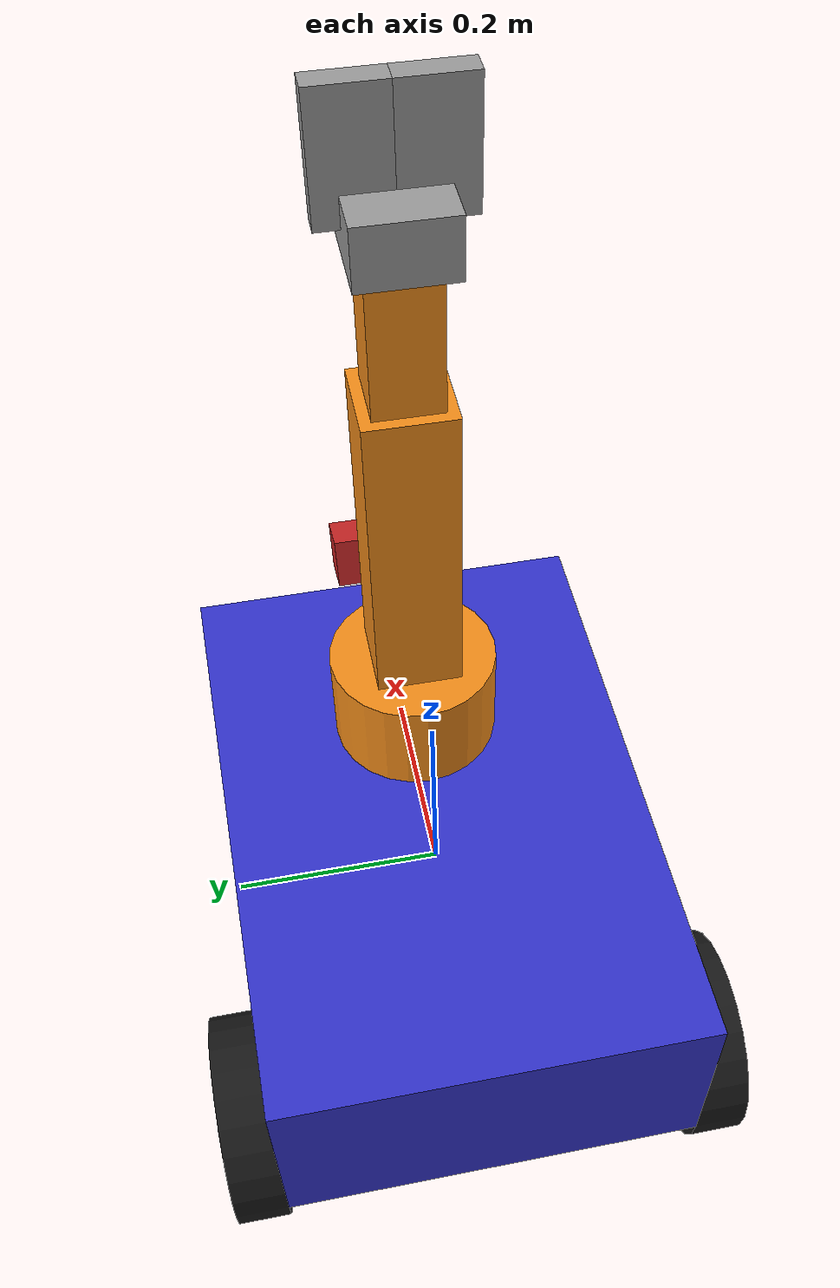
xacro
<?xml version="1.0"?>

<robot name="smartsort_robot" xmlns:xacro="http://www.ros.org/wiki/xacro">

  <!-- Xacro Arguments        -->
  <xacro:arg name="is_ignition" default="true"/>
  <xacro:arg name="wheel_radius" default="0.1"/>
  <xacro:arg name="wheel_separation" default="0.45"/>
  <xacro:arg name="base_length" default="0.6"/>
  <xacro:arg name="base_width" default="0.4"/>
  <xacro:arg name="base_height" default="0.2"/>

  <xacro:property name="base_length" value="$(arg base_length)" />
  <xacro:property name="base_width" value="$(arg base_width)" />
  <xacro:property name="base_height" value="$(arg base_height)" />
  <xacro:property name="wheel_radius" value="$(arg wheel_radius)" />
  <xacro:property name="wheel_separation" value="$(arg wheel_separation)" />

  <!-- Include Gazebo & ROS2 Control Submodules -->
  <xacro:include filename="smartsort_gazebo.xacro"/>
  <xacro:include filename="smartsort_ros2_control.xacro"/>

  <!-- Base Link -->
  <link name="base_link">
    <visual>
      <geometry>
        <box size="${base_length} ${base_width} ${base_height}"/>
      </geometry>
      <material name="blue">
        <color rgba="0.2 0.2 0.8 1.0"/>
      </material>
    </visual>
    <collision>
      <geometry>
        <box size="${base_length} ${base_width} ${base_height}"/>
      </geometry>
    </collision>
    <inertial>
      <mass value="10.0"/>
      <inertia ixx="0.1" ixy="0.0" ixz="0.0"
               iyy="0.1" iyz="0.0" izz="0.1"/>
    </inertial>
  </link>

  <!-- Left Wheel -->
  <link name="left_wheel">
    <visual>
      <geometry>
        <cylinder radius="${wheel_radius}" length="0.05"/>
      </geometry>
      <material name="black">
        <color rgba="0.1 0.1 0.1 1.0"/>
      </material>
    </visual>
    <collision>
      <geometry>
        <cylinder radius="${wheel_radius}" length="0.05"/>
      </geometry>
    </collision>
    <inertial>
      <mass value="1.0"/>
      <inertia ixx="0.01" ixy="0.0" ixz="0.0"
               iyy="0.01" iyz="0.0" izz="0.01"/>
    </inertial>
  </link>

  <joint name="left_wheel_joint" type="continuous">
    <parent link="base_link"/>
    <child link="left_wheel"/>
    <origin xyz="-0.2 0.225 -${base_height/2}" rpy="1.5708 0 0"/>
    <axis xyz="0 0 1"/>
  </joint>

  <!-- Right Wheel -->
  <link name="right_wheel">
    <visual>
      <geometry>
        <cylinder radius="${wheel_radius}" length="0.05"/>
      </geometry>
      <material name="black"/>
    </visual>
    <collision>
      <geometry>
        <cylinder radius="${wheel_radius}" length="0.05"/>
      </geometry>
    </collision>
    <inertial>
      <mass value="1.0"/>
      <inertia ixx="0.01" ixy="0.0" ixz="0.0"
               iyy="0.01" iyz="0.0" izz="0.01"/>
    </inertial>
  </link>

  <joint name="right_wheel_joint" type="continuous">
    <parent link="base_link"/>
    <child link="right_wheel"/>
    <origin xyz="-0.2 -0.225 -${base_height/2}" rpy="1.5708 0 0"/>
    <axis xyz="0 0 1"/>
  </joint>

  <!-- Caster Wheel -->
  <link name="caster">
    <visual>
      <geometry>
        <sphere radius="0.05"/>
      </geometry>
      <material name="gray"/>
    </visual>
    <collision>
      <geometry>
        <sphere radius="0.05"/>
      </geometry>
      <surface>
        <friction>
          <ode>
            <mu>0.0</mu>
            <mu2>0.0</mu2>
          </ode>
        </friction>
      </surface>
    </collision>
    <inertial>
      <mass value="0.5"/>
      <inertia ixx="0.001" ixy="0.0" ixz="0.0"
               iyy="0.001" iyz="0.0" izz="0.001"/>
    </inertial>
  </link>

  <joint name="caster_joint" type="fixed">
    <parent link="base_link"/>
    <child link="caster"/>
    <origin xyz="0.2 0 -0.15" rpy="0 0 0"/>
  </joint>

  <!-- Arm Assembly -->
  <link name="arm_base">
    <visual>
      <geometry>
        <cylinder radius="0.08" length="0.1"/>
      </geometry>
      <material name="orange"/>
    </visual>
    <collision>
      <geometry>
        <cylinder radius="0.08" length="0.1"/>
      </geometry>
    </collision>
  </link>

  <joint name="arm_base_joint" type="fixed">
    <parent link="base_link"/>
    <child link="arm_base"/>
    <origin xyz="0.1 0 0.15"/>
  </joint>

  <!-- Shoulder -->
  <xacro:macro name="arm_link" params="name size mass parent origin axis lower upper effort velocity">
    <link name="${name}">
      <visual><geometry><box size="${size}"/></geometry><material name="orange"/></visual>
      <collision><geometry><box size="${size}"/></geometry></collision>
      <inertial><mass value="${mass}"/></inertial>
    </link>
    <joint name="${name}_joint" type="revolute">
      <parent link="${parent}"/>
      <child link="${name}"/>
      <origin xyz="${origin}" rpy="0 0 0"/>
      <axis xyz="${axis}"/>
      <limit lower="${lower}" upper="${upper}" effort="${effort}" velocity="${velocity}"/>
    </joint>
  </xacro:macro>

  <xacro:arm_link name="arm_link1" size="0.08 0.08 0.3" mass="1.5" parent="arm_base"
                  origin="0 0 0.2" axis="0 1 0" lower="-1.57" upper="1.57" effort="50" velocity="1.0"/>
  <xacro:arm_link name="arm_link2" size="0.06 0.06 0.25" mass="1.0" parent="arm_link1"
                  origin="0 0 0.15" axis="0 1 0" lower="-1.57" upper="1.57" effort="30" velocity="1.0"/>

  <!-- Wrist -->
  <link name="gripper_base">
    <visual><geometry><box size="0.1 0.08 0.05"/></geometry><material name="gray"/></visual>
    <collision><geometry><box size="0.1 0.08 0.05"/></geometry></collision>
  </link>

  <joint name="wrist_joint" type="revolute">
    <parent link="arm_link2"/>
    <child link="gripper_base"/>
    <origin xyz="0 0 0.15"/>
    <axis xyz="1 0 0"/>
    <limit lower="-1.57" upper="1.57" effort="10" velocity="1.0"/>
  </joint>

  <!-- Gripper Fingers -->
  <xacro:macro name="gripper_finger" params="name parent xyz limit_lower limit_upper">
    <link name="${name}">
      <visual><geometry><box size="0.02 0.06 0.1"/></geometry><material name="gray"/></visual>
      <collision><geometry><box size="0.02 0.06 0.1"/></geometry></collision>
    </link>
    <joint name="${name}_joint" type="prismatic">
      <parent link="${parent}"/>
      <child link="${name}"/>
      <origin xyz="${xyz}" rpy="0 0 0"/>
      <axis xyz="0 1 0"/>
      <limit lower="${limit_lower}" upper="${limit_upper}" effort="10" velocity="0.1"/>
    </joint>
  </xacro:macro>

  <xacro:gripper_finger name="left_finger" parent="gripper_base" xyz="0 0.03 0.05" limit_lower="0.0" limit_upper="0.04"/>
  <xacro:gripper_finger name="right_finger" parent="gripper_base" xyz="0 -0.03 0.05" limit_lower="-0.04" limit_upper="0.0"/>

  <!-- Camera -->
  <link name="camera_link">
    <visual><geometry><box size="0.05 0.1 0.05"/></geometry><material name="red"/></visual>
    <collision><geometry><box size="0.05 0.1 0.05"/></geometry></collision>
  </link>

  <joint name="camera_joint" type="fixed">
    <parent link="base_link"/>
    <child link="camera_link"/>
    <origin xyz="0.3 0 0.15" rpy="0 0.3 0"/>
  </joint>

  <!-- Gazebo Plugins -->
  <gazebo>
    <plugin filename="gz-sim-diff-drive-system" name="gz::sim::systems::DiffDrive">
      <left_joint>left_wheel_joint</left_joint>
      <right_joint>right_wheel_joint</right_joint>
      <wheel_separation>${wheel_separation}</wheel_separation>
      <wheel_radius>${wheel_radius}</wheel_radius>
      <odom_publish_frequency>50</odom_publish_frequency>
      <topic>cmd_vel</topic>
      <odom_topic>odom</odom_topic>
      <frame_id>odom</frame_id>
      <child_frame_id>base_link</child_frame_id>
    </plugin>
  </gazebo>

  <gazebo reference="camera_link">
    <sensor name="camera" type="camera">
      <pose>0 0 0 0 0 0</pose>
      <camera>
        <horizontal_fov>1.3962634</horizontal_fov>
        <image><width>640</width><height>480</height><format>R8G8B8</format></image>
        <clip><near>0.02</near><far>300</far></clip>
      </camera>
      <always_on>true</always_on>
      <update_rate>30</update_rate>
      <visualize>true</visualize>
      <topic>camera/image_raw</topic>
    </sensor>
  </gazebo>

  <gazebo>
    <plugin filename="gz-sim-joint-state-publisher-system" name="gz::sim::systems::JointStatePublisher">
      <joint_name>left_wheel_joint</joint_name>
      <joint_name>right_wheel_joint</joint_name>
      <joint_name>shoulder_joint</joint_name>
      <joint_name>elbow_joint</joint_name>
      <joint_name>wrist_joint</joint_name>
      <joint_name>left_finger_joint</joint_name>
      <joint_name>right_finger_joint</joint_name>
    </plugin>
  </gazebo>

</robot>
